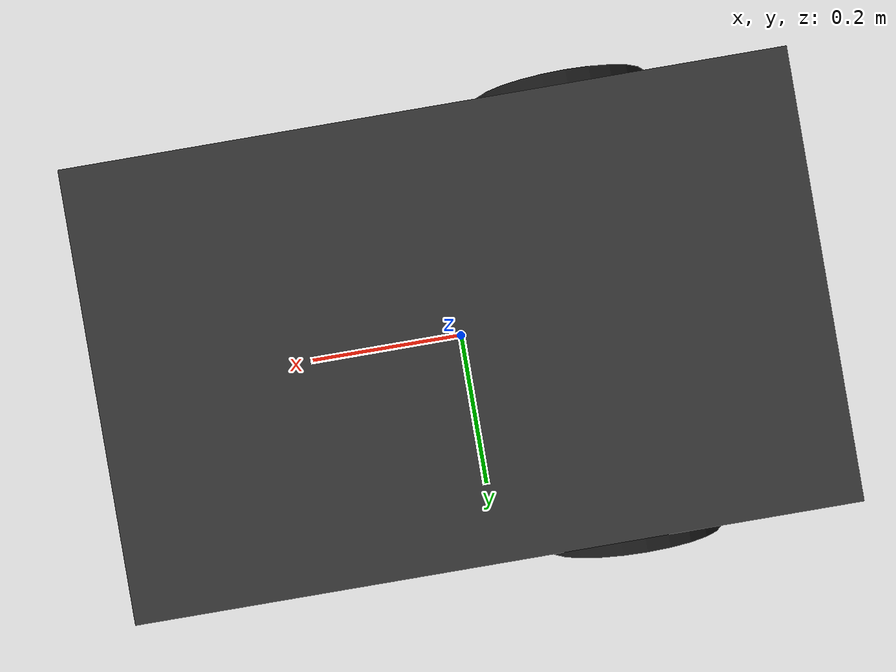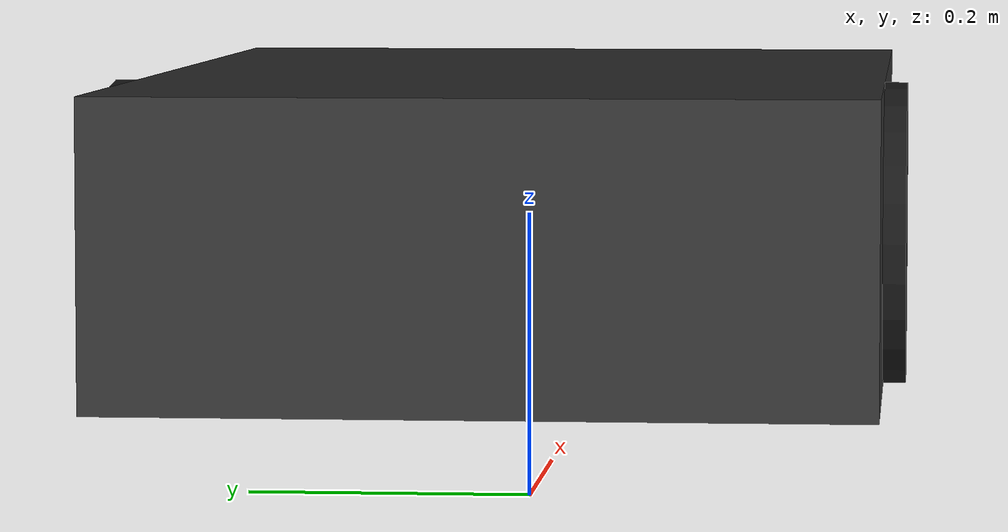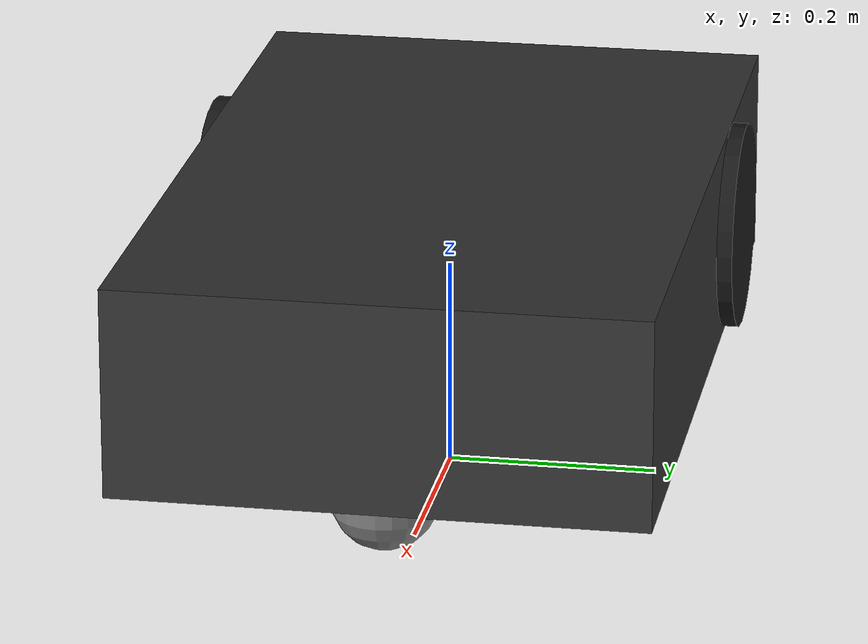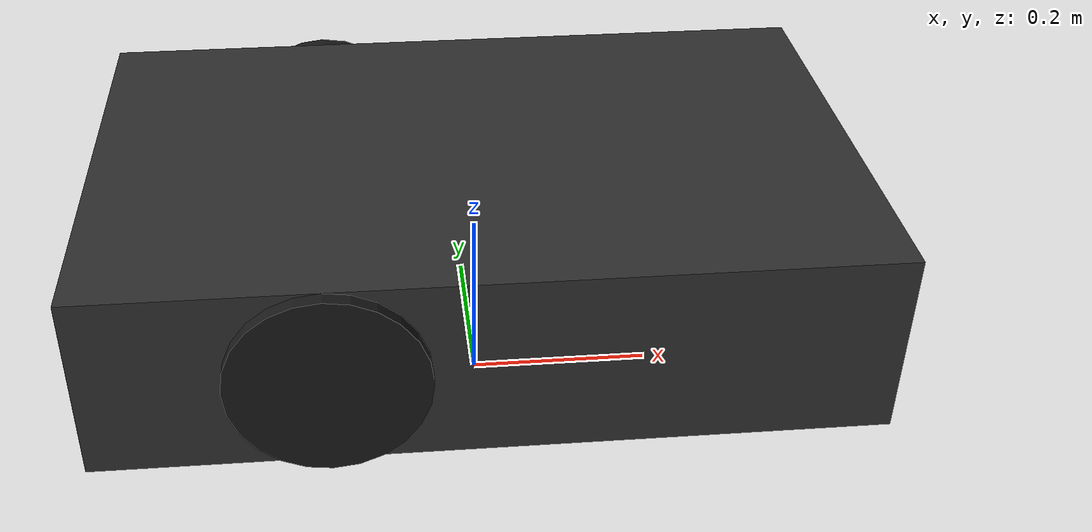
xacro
<?xml version="1.0" ?>
<robot name="differential_robot" xmlns:xacro="http://www.ros.org/wiki/xacro">

  <!-- ===== КОНСТАНТЫ (PROPERTIES) ===== -->
  <xacro:property name="base_length" value="0.8"/>
  <xacro:property name="base_width" value="0.5"/>
  <xacro:property name="base_height" value="0.2"/>
  <xacro:property name="wheel_radius" value="0.1"/>
  <xacro:property name="wheel_thickness" value="0.08"/>
  <xacro:property name="wheel_separation" value="0.45"/>
  <xacro:property name="base_mass" value="5.0"/>
  <xacro:property name="wheel_mass" value="0.5"/>
  <xacro:property name="caster_mass" value="0.2"/>

  <!-- ===== МАТЕРИАЛЫ ===== -->
  <material name="base_color">
    <color rgba="0.2 0.2 0.2 1.0"/>
  </material>

  <material name="wheel_color">
    <color rgba="0.1 0.1 0.1 1.0"/>
  </material>

  <material name="caster_color">
    <color rgba="0.5 0.5 0.5 1.0"/>
  </material>

  <!-- ===== МАКРОС: ИНЕРЦИЯ ПРЯМОУГОЛЬНОГО БЛОКА ===== -->
  <xacro:macro name="box_inertia" params="mass length width height">
    <inertia ixx="${mass * (width*width + height*height) / 12}"
             iyy="${mass * (length*length + height*height) / 12}"
             izz="${mass * (length*length + width*width) / 12}"
             ixy="0" ixz="0" iyz="0"/>
  </xacro:macro>

  <!-- ===== МАКРОС: ИНЕРЦИЯ ЦИЛИНДРА ===== -->
  <xacro:macro name="cylinder_inertia" params="mass radius length">
    <inertia ixx="${mass * radius * radius / 2}"
             iyy="${mass * (3*radius*radius + length*length) / 12}"
             izz="${mass * (3*radius*radius + length*length) / 12}"
             ixy="0" ixz="0" iyz="0"/>
  </xacro:macro>

  <!-- ===== МАКРОС: ИНЕРЦИЯ СФЕРЫ ===== -->
  <xacro:macro name="sphere_inertia" params="mass radius">
    <inertia ixx="${2 * mass * radius * radius / 5}"
             iyy="${2 * mass * radius * radius / 5}"
             izz="${2 * mass * radius * radius / 5}"
             ixy="0" ixz="0" iyz="0"/>
  </xacro:macro>

  <!-- ===== ЗВЕНО: BASE_FOOTPRINT ===== -->
  <link name="base_footprint"/>

  <!-- ===== ЗВЕНО: BASE_LINK ===== -->
  <link name="base_link">
    <visual>
      <geometry>
        <box size="${base_length} ${base_width} ${base_height}"/>
      </geometry>
      <origin xyz="0 0 ${base_height/2}" rpy="0 0 0"/>
      <material name="base_color"/>
    </visual>

    <collision>
      <geometry>
        <box size="${base_length} ${base_width} ${base_height}"/>
      </geometry>
      <origin xyz="0 0 ${base_height/2}" rpy="0 0 0"/>
    </collision>

    <inertial>
      <mass value="${base_mass}"/>
      <origin xyz="0 0 ${base_height/2}" rpy="0 0 0"/>
      <xacro:box_inertia mass="${base_mass}" length="${base_length}" width="${base_width}" height="${base_height}"/>
    </inertial>
  </link>

  <!-- ===== СОЧЛЕНЕНИЕ: base_footprint → base_link ===== -->
  <joint name="base_footprint_joint" type="fixed">
    <parent link="base_footprint"/>
    <child link="base_link"/>
    <origin xyz="0 0 ${base_height/2}" rpy="0 0 0"/>
  </joint>

  <!-- ===== ЗВЕНО: ЛЕВОЕ КОЛЕСО ===== -->
  <link name="wheel_left">
    <visual>
      <geometry>
        <cylinder length="${wheel_thickness}" radius="${wheel_radius}"/>
      </geometry>
      <origin xyz="0 0 0" rpy="${pi/2} 0 0"/>
      <material name="wheel_color"/>
    </visual>

    <collision>
      <geometry>
        <cylinder length="${wheel_thickness}" radius="${wheel_radius}"/>
      </geometry>
      <origin xyz="0 0 0" rpy="${pi/2} 0 0"/>
    </collision>

    <inertial>
      <mass value="${wheel_mass}"/>
      <origin xyz="0 0 0" rpy="${pi/2} 0 0"/>
      <xacro:cylinder_inertia mass="${wheel_mass}" radius="${wheel_radius}" length="${wheel_thickness}"/>
    </inertial>
  </link>

  <!-- ===== СОЧЛЕНЕНИЕ: base_link → wheel_left ===== -->
  <joint name="wheel_left_joint" type="revolute">
    <parent link="base_link"/>
    <child link="wheel_left"/>
    <origin xyz="${-base_length/5} ${wheel_separation/2} ${base_height/2}" rpy="0 0 0"/>
    <axis xyz="0 1 0"/>
    <limit lower="-10" upper="10" effort="50" velocity="10"/>
    <dynamics damping="0.0" friction="0.0"/>
  </joint>

  <!-- ===== ЗВЕНО: ПРАВОЕ КОЛЕСО ===== -->
  <link name="wheel_right">
    <visual>
      <geometry>
        <cylinder length="${wheel_thickness}" radius="${wheel_radius}"/>
      </geometry>
      <origin xyz="0 0 0" rpy="${pi/2} 0 0"/>
      <material name="wheel_color"/>
    </visual>

    <collision>
      <geometry>
        <cylinder length="${wheel_thickness}" radius="${wheel_radius}"/>
      </geometry>
      <origin xyz="0 0 0" rpy="${pi/2} 0 0"/>
    </collision>

    <inertial>
      <mass value="${wheel_mass}"/>
      <origin xyz="0 0 0" rpy="${pi/2} 0 0"/>
      <xacro:cylinder_inertia mass="${wheel_mass}" radius="${wheel_radius}" length="${wheel_thickness}"/>
    </inertial>
  </link>

  <!-- ===== СОЧЛЕНЕНИЕ: base_link → wheel_right ===== -->
  <joint name="wheel_right_joint" type="revolute">
    <parent link="base_link"/>
    <child link="wheel_right"/>
    <origin xyz="${-base_length/5} ${-wheel_separation/2} ${base_height/2}" rpy="0 0 0"/>
    <axis xyz="0 1 0"/>
    <limit lower="-10" upper="10" effort="50" velocity="10"/>
    <dynamics damping="0.0" friction="0.0"/>
  </joint>

  <!-- ===== ЗВЕНО: ОПОРНОЕ КОЛЕСО (CASTER) ===== -->
  <link name="caster_wheel">
    <visual>
      <geometry>
        <sphere radius="${wheel_radius/2}"/>
      </geometry>
      <origin xyz="0 0 0" rpy="0 0 0"/>
      <material name="caster_color"/>
    </visual>

    <collision>
      <geometry>
        <sphere radius="${wheel_radius/2}"/>
      </geometry>
      <origin xyz="0 0 0" rpy="0 0 0"/>
    </collision>

    <inertial>
      <mass value="${caster_mass}"/>
      <origin xyz="0 0 0" rpy="0 0 0"/>
      <xacro:sphere_inertia mass="${caster_mass}" radius="${wheel_radius/2}"/>
    </inertial>
  </link>

  <!-- ===== СОЧЛЕНЕНИЕ: base_link → caster_wheel ===== -->
  <joint name="caster_wheel_joint" type="fixed">
    <parent link="base_link"/>
    <child link="caster_wheel"/>
    <origin xyz="${base_length/2 - wheel_radius/2} 0 0" rpy="0 0 0"/>
  </joint>

</robot>
